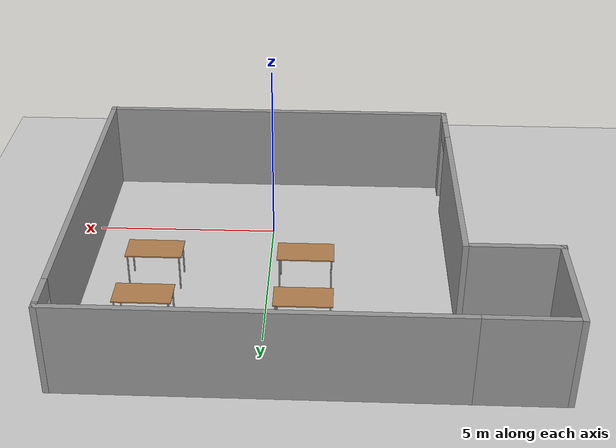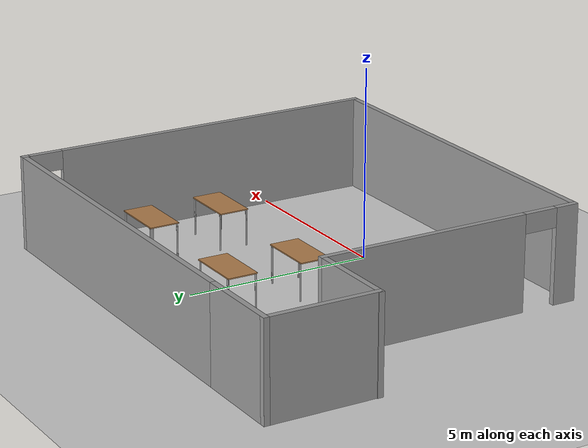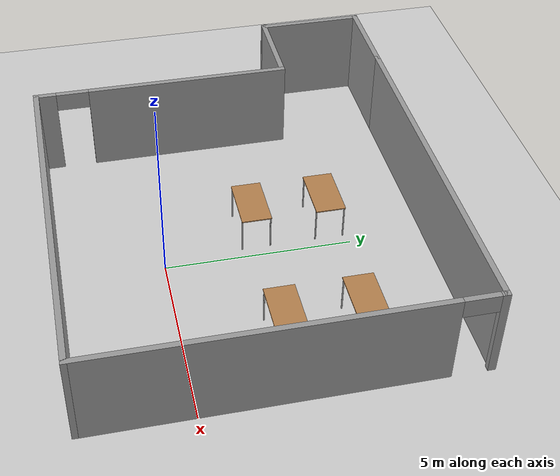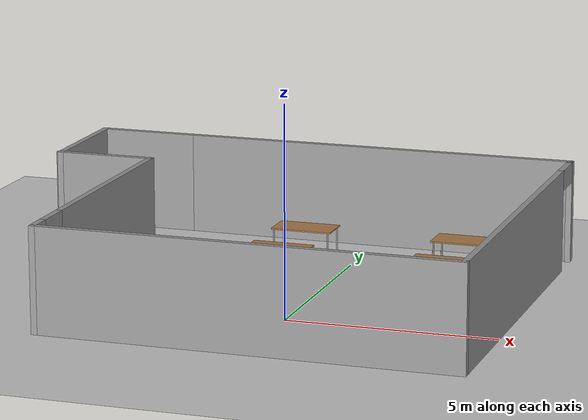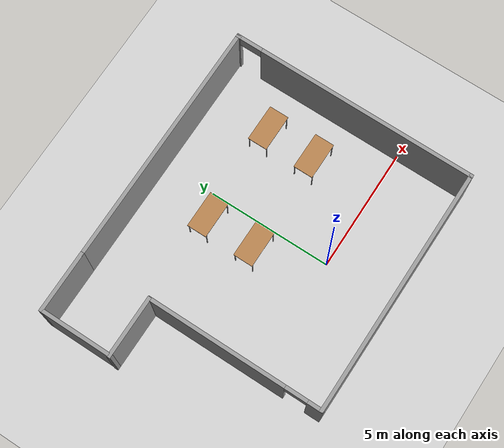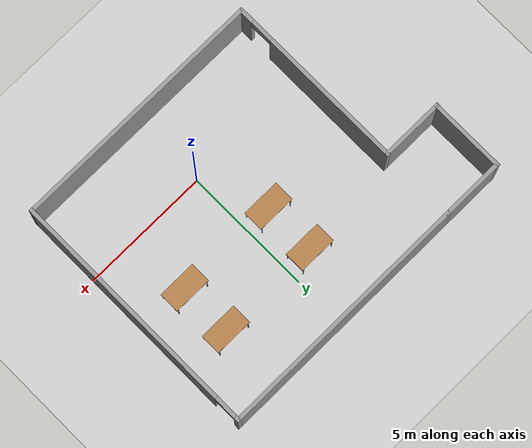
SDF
<sdf version="1.7">
 <world name="default">
  <model name="ground_plane">
   <static>1</static>
   <link name="link">
    <collision name="collision">
     <geometry><plane><normal>0 0 1</normal><size>100 100</size></plane></geometry>
     <surface>
      <contact><collide_bitmask>65535</collide_bitmask></contact>
      <friction><ode><mu>100</mu><mu2>50</mu2></ode></friction>
     </surface>
    </collision>
    <visual name="visual">
     <cast_shadows>0</cast_shadows>
     <geometry><plane><normal>0 0 1</normal><size>100 100</size></plane></geometry>
     <material>
      <script><uri>file://media/materials/scripts/gazebo.material</uri><name>Gazebo/Grey</name></script>
     </material>
    </visual>
   </link>
  </model>
  <model name="table_0_clone_1">
   <static>1</static>
   <link name="link">
    <collision name="surface">
     <pose>0 0 1 0 -0 0</pose>
     <geometry><box><size>1.5 0.8 0.03</size></box></geometry>
     <surface><friction><ode><mu>0.6</mu><mu2>0.6</mu2></ode></friction></surface>
    </collision>
    <visual name="visual1">
     <pose>0 0 1 0 -0 0</pose>
     <geometry><box><size>1.5 0.8 0.03</size></box></geometry>
     <material>
      <script><uri>file://media/materials/scripts/gazebo.material</uri><name>Gazebo/Wood</name></script>
     </material>
    </visual>
    <collision name="front_left_leg">
     <pose>0.68 0.38 0.5 0 -0 0</pose>
     <geometry><cylinder><radius>0.02</radius><length>1</length></cylinder></geometry>
    </collision>
    <visual name="front_left_leg">
     <pose>0.68 0.38 0.5 0 -0 0</pose>
     <geometry><cylinder><radius>0.02</radius><length>1</length></cylinder></geometry>
     <material>
      <script><uri>file://media/materials/scripts/gazebo.material</uri><name>Gazebo/Grey</name></script>
     </material>
    </visual>
    <collision name="front_right_leg">
     <pose>0.68 -0.38 0.5 0 -0 0</pose>
     <geometry><cylinder><radius>0.02</radius><length>1</length></cylinder></geometry>
    </collision>
    <visual name="front_right_leg">
     <pose>0.68 -0.38 0.5 0 -0 0</pose>
     <geometry><cylinder><radius>0.02</radius><length>1</length></cylinder></geometry>
     <material>
      <script><uri>file://media/materials/scripts/gazebo.material</uri><name>Gazebo/Grey</name></script>
     </material>
    </visual>
    <collision name="back_right_leg">
     <pose>-0.68 -0.38 0.5 0 -0 0</pose>
     <geometry><cylinder><radius>0.02</radius><length>1</length></cylinder></geometry>
    </collision>
    <visual name="back_right_leg">
     <pose>-0.68 -0.38 0.5 0 -0 0</pose>
     <geometry><cylinder><radius>0.02</radius><length>1</length></cylinder></geometry>
     <material>
      <script><uri>file://media/materials/scripts/gazebo.material</uri><name>Gazebo/Grey</name></script>
     </material>
    </visual>
    <collision name="back_left_leg">
     <pose>-0.68 0.38 0.5 0 -0 0</pose>
     <geometry><cylinder><radius>0.02</radius><length>1</length></cylinder></geometry>
    </collision>
    <visual name="back_left_leg">
     <pose>-0.68 0.38 0.5 0 -0 0</pose>
     <geometry><cylinder><radius>0.02</radius><length>1</length></cylinder></geometry>
     <material>
      <script><uri>file://media/materials/scripts/gazebo.material</uri><name>Gazebo/Grey</name></script>
     </material>
    </visual>
   </link>
   <pose>3 4.5 0 0 -0 0</pose>
  </model>
  <model name="table_0_clone_4">
   <static>1</static>
   <link name="link">
    <collision name="surface">
     <pose>0 0 1 0 -0 0</pose>
     <geometry><box><size>1.5 0.8 0.03</size></box></geometry>
     <surface><friction><ode><mu>0.6</mu><mu2>0.6</mu2></ode></friction></surface>
    </collision>
    <visual name="visual1">
     <pose>0 0 1 0 -0 0</pose>
     <geometry><box><size>1.5 0.8 0.03</size></box></geometry>
     <material>
      <script><uri>file://media/materials/scripts/gazebo.material</uri><name>Gazebo/Wood</name></script>
     </material>
    </visual>
    <collision name="front_left_leg">
     <pose>0.68 0.38 0.5 0 -0 0</pose>
     <geometry><cylinder><radius>0.02</radius><length>1</length></cylinder></geometry>
    </collision>
    <visual name="front_left_leg">
     <pose>0.68 0.38 0.5 0 -0 0</pose>
     <geometry><cylinder><radius>0.02</radius><length>1</length></cylinder></geometry>
     <material>
      <script><uri>file://media/materials/scripts/gazebo.material</uri><name>Gazebo/Grey</name></script>
     </material>
    </visual>
    <collision name="front_right_leg">
     <pose>0.68 -0.38 0.5 0 -0 0</pose>
     <geometry><cylinder><radius>0.02</radius><length>1</length></cylinder></geometry>
    </collision>
    <visual name="front_right_leg">
     <pose>0.68 -0.38 0.5 0 -0 0</pose>
     <geometry><cylinder><radius>0.02</radius><length>1</length></cylinder></geometry>
     <material>
      <script><uri>file://media/materials/scripts/gazebo.material</uri><name>Gazebo/Grey</name></script>
     </material>
    </visual>
    <collision name="back_right_leg">
     <pose>-0.68 -0.38 0.5 0 -0 0</pose>
     <geometry><cylinder><radius>0.02</radius><length>1</length></cylinder></geometry>
    </collision>
    <visual name="back_right_leg">
     <pose>-0.68 -0.38 0.5 0 -0 0</pose>
     <geometry><cylinder><radius>0.02</radius><length>1</length></cylinder></geometry>
     <material>
      <script><uri>file://media/materials/scripts/gazebo.material</uri><name>Gazebo/Grey</name></script>
     </material>
    </visual>
    <collision name="back_left_leg">
     <pose>-0.68 0.38 0.5 0 -0 0</pose>
     <geometry><cylinder><radius>0.02</radius><length>1</length></cylinder></geometry>
    </collision>
    <visual name="back_left_leg">
     <pose>-0.68 0.38 0.5 0 -0 0</pose>
     <geometry><cylinder><radius>0.02</radius><length>1</length></cylinder></geometry>
     <material>
      <script><uri>file://media/materials/scripts/gazebo.material</uri><name>Gazebo/Grey</name></script>
     </material>
    </visual>
   </link>
   <pose>-1 4.5 0 0 -0 0</pose>
  </model>
  <model name="table_0_clone_5">
   <static>1</static>
   <link name="link">
    <collision name="surface">
     <pose>0 0 1 0 -0 0</pose>
     <geometry><box><size>1.5 0.8 0.03</size></box></geometry>
     <surface><friction><ode><mu>0.6</mu><mu2>0.6</mu2></ode></friction></surface>
    </collision>
    <visual name="visual1">
     <pose>0 0 1 0 -0 0</pose>
     <geometry><box><size>1.5 0.8 0.03</size></box></geometry>
     <material>
      <script><uri>file://media/materials/scripts/gazebo.material</uri><name>Gazebo/Wood</name></script>
     </material>
    </visual>
    <collision name="front_left_leg">
     <pose>0.68 0.38 0.5 0 -0 0</pose>
     <geometry><cylinder><radius>0.02</radius><length>1</length></cylinder></geometry>
    </collision>
    <visual name="front_left_leg">
     <pose>0.68 0.38 0.5 0 -0 0</pose>
     <geometry><cylinder><radius>0.02</radius><length>1</length></cylinder></geometry>
     <material>
      <script><uri>file://media/materials/scripts/gazebo.material</uri><name>Gazebo/Grey</name></script>
     </material>
    </visual>
    <collision name="front_right_leg">
     <pose>0.68 -0.38 0.5 0 -0 0</pose>
     <geometry><cylinder><radius>0.02</radius><length>1</length></cylinder></geometry>
    </collision>
    <visual name="front_right_leg">
     <pose>0.68 -0.38 0.5 0 -0 0</pose>
     <geometry><cylinder><radius>0.02</radius><length>1</length></cylinder></geometry>
     <material>
      <script><uri>file://media/materials/scripts/gazebo.material</uri><name>Gazebo/Grey</name></script>
     </material>
    </visual>
    <collision name="back_right_leg">
     <pose>-0.68 -0.38 0.5 0 -0 0</pose>
     <geometry><cylinder><radius>0.02</radius><length>1</length></cylinder></geometry>
    </collision>
    <visual name="back_right_leg">
     <pose>-0.68 -0.38 0.5 0 -0 0</pose>
     <geometry><cylinder><radius>0.02</radius><length>1</length></cylinder></geometry>
     <material>
      <script><uri>file://media/materials/scripts/gazebo.material</uri><name>Gazebo/Grey</name></script>
     </material>
    </visual>
    <collision name="back_left_leg">
     <pose>-0.68 0.38 0.5 0 -0 0</pose>
     <geometry><cylinder><radius>0.02</radius><length>1</length></cylinder></geometry>
    </collision>
    <visual name="back_left_leg">
     <pose>-0.68 0.38 0.5 0 -0 0</pose>
     <geometry><cylinder><radius>0.02</radius><length>1</length></cylinder></geometry>
     <material>
      <script><uri>file://media/materials/scripts/gazebo.material</uri><name>Gazebo/Grey</name></script>
     </material>
    </visual>
   </link>
   <pose>-1 2.5 0 0 -0 0</pose>
  </model>
  <model name="table_0_clone_1_clone_clone">
   <static>1</static>
   <link name="link">
    <collision name="surface">
     <pose>0 0 1 0 -0 0</pose>
     <geometry><box><size>1.5 0.8 0.03</size></box></geometry>
     <surface><friction><ode><mu>0.6</mu><mu2>0.6</mu2></ode></friction></surface>
    </collision>
    <visual name="visual1">
     <pose>0 0 1 0 -0 0</pose>
     <geometry><box><size>1.5 0.8 0.03</size></box></geometry>
     <material>
      <script><uri>file://media/materials/scripts/gazebo.material</uri><name>Gazebo/Wood</name></script>
     </material>
    </visual>
    <collision name="front_left_leg">
     <pose>0.68 0.38 0.5 0 -0 0</pose>
     <geometry><cylinder><radius>0.02</radius><length>1</length></cylinder></geometry>
    </collision>
    <visual name="front_left_leg">
     <pose>0.68 0.38 0.5 0 -0 0</pose>
     <geometry><cylinder><radius>0.02</radius><length>1</length></cylinder></geometry>
     <material>
      <script><uri>file://media/materials/scripts/gazebo.material</uri><name>Gazebo/Grey</name></script>
     </material>
    </visual>
    <collision name="front_right_leg">
     <pose>0.68 -0.38 0.5 0 -0 0</pose>
     <geometry><cylinder><radius>0.02</radius><length>1</length></cylinder></geometry>
    </collision>
    <visual name="front_right_leg">
     <pose>0.68 -0.38 0.5 0 -0 0</pose>
     <geometry><cylinder><radius>0.02</radius><length>1</length></cylinder></geometry>
     <material>
      <script><uri>file://media/materials/scripts/gazebo.material</uri><name>Gazebo/Grey</name></script>
     </material>
    </visual>
    <collision name="back_right_leg">
     <pose>-0.68 -0.38 0.5 0 -0 0</pose>
     <geometry><cylinder><radius>0.02</radius><length>1</length></cylinder></geometry>
    </collision>
    <visual name="back_right_leg">
     <pose>-0.68 -0.38 0.5 0 -0 0</pose>
     <geometry><cylinder><radius>0.02</radius><length>1</length></cylinder></geometry>
     <material>
      <script><uri>file://media/materials/scripts/gazebo.material</uri><name>Gazebo/Grey</name></script>
     </material>
    </visual>
    <collision name="back_left_leg">
     <pose>-0.68 0.38 0.5 0 -0 0</pose>
     <geometry><cylinder><radius>0.02</radius><length>1</length></cylinder></geometry>
    </collision>
    <visual name="back_left_leg">
     <pose>-0.68 0.38 0.5 0 -0 0</pose>
     <geometry><cylinder><radius>0.02</radius><length>1</length></cylinder></geometry>
     <material>
      <script><uri>file://media/materials/scripts/gazebo.material</uri><name>Gazebo/Grey</name></script>
     </material>
    </visual>
   </link>
   <pose>3 2.5 0 0 -0 0</pose>
  </model>
  <model name="Kog_beo_room_10_10_25">
   <pose>-1.17724 2.15062 0 0 -0 0</pose>
   <link name="Wall_52">
    <collision name="Wall_52_Collision">
     <geometry><box><size>10 0.15 2.5</size></box></geometry>
     <pose>0 0 1.25 0 -0 0</pose>
    </collision>
    <visual name="Wall_52_Visual">
     <pose>0 0 1.25 0 -0 0</pose>
     <geometry><box><size>10 0.15 2.5</size></box></geometry>
     <material>
      <script><uri>file://media/materials/scripts/gazebo.material</uri><name>Gazebo/Grey</name></script>
      <ambient>1 1 1 1</ambient>
     </material>
     <meta><layer>0</layer></meta>
    </visual>
    <pose>1.18506 4.92498 0 0 -0 0</pose>
   </link>
   <link name="Wall_53">
    <pose>6.11006 -1.8e-05 0 0 -0 -1.5708</pose>
    <visual name="Wall_53_Visual_0">
     <pose>-4.89745 0 1.25 0 -0 0</pose>
     <geometry><box><size>0.20511 0.15 2.5</size></box></geometry>
     <material>
      <script><uri>file://media/materials/scripts/gazebo.material</uri><name>Gazebo/Grey</name></script>
      <ambient>1 1 1 1</ambient>
     </material>
     <meta><layer>0</layer></meta>
    </visual>
    <collision name="Wall_53_Collision_0">
     <geometry><box><size>0.20511 0.15 2.5</size></box></geometry>
     <pose>-4.89745 0 1.25 0 -0 0</pose>
    </collision>
    <visual name="Wall_53_Visual_1">
     <pose>0.552555 0 1.25 0 -0 0</pose>
     <geometry><box><size>8.89489 0.15 2.5</size></box></geometry>
     <material>
      <script><uri>file://media/materials/scripts/gazebo.material</uri><name>Gazebo/Grey</name></script>
      <ambient>1 1 1 1</ambient>
     </material>
     <meta><layer>0</layer></meta>
    </visual>
    <collision name="Wall_53_Collision_1">
     <geometry><box><size>8.89489 0.15 2.5</size></box></geometry>
     <pose>0.552555 0 1.25 0 -0 0</pose>
    </collision>
    <visual name="Wall_53_Visual_2">
     <pose>-4.34489 0 2.25 0 -0 0</pose>
     <geometry><box><size>0.9 0.15 0.5</size></box></geometry>
     <material>
      <script><uri>file://media/materials/scripts/gazebo.material</uri><name>Gazebo/Grey</name></script>
      <ambient>1 1 1 1</ambient>
     </material>
     <meta><layer>0</layer></meta>
    </visual>
    <collision name="Wall_53_Collision_2">
     <geometry><box><size>0.9 0.15 0.5</size></box></geometry>
     <pose>-4.34489 0 2.25 0 -0 0</pose>
    </collision>
   </link>
   <link name="Wall_54">
    <collision name="Wall_54_Collision">
     <geometry><box><size>10 0.15 2.5</size></box></geometry>
     <pose>0 0 1.25 0 -0 0</pose>
    </collision>
    <visual name="Wall_54_Visual">
     <pose>0 0 1.25 0 -0 0</pose>
     <geometry><box><size>10 0.15 2.5</size></box></geometry>
     <material>
      <script><uri>file://media/materials/scripts/gazebo.material</uri><name>Gazebo/Grey</name></script>
      <ambient>1 1 1 1</ambient>
     </material>
     <meta><layer>0</layer></meta>
    </visual>
    <pose>1.18506 -4.92502 0 0 -0 3.14159</pose>
   </link>
   <link name="Wall_57">
    <collision name="Wall_57_Collision">
     <geometry><box><size>2.5 0.15 2.5</size></box></geometry>
     <pose>0 0 1.25 0 -0 0</pose>
    </collision>
    <visual name="Wall_57_Visual">
     <pose>0 0 1.25 0 -0 0</pose>
     <geometry><box><size>2.5 0.15 2.5</size></box></geometry>
     <material>
      <script><uri>file://media/materials/scripts/gazebo.material</uri><name>Gazebo/Grey</name></script>
      <ambient>1 1 1 1</ambient>
     </material>
     <meta><layer>0</layer></meta>
    </visual>
    <pose>-4.91494 4.92498 0 0 -0 3.14159</pose>
   </link>
   <link name="Wall_58">
    <collision name="Wall_58_Collision">
     <geometry><box><size>3.00007 0.15 2.5</size></box></geometry>
     <pose>0 0 1.25 0 -0 0</pose>
    </collision>
    <visual name="Wall_58_Visual">
     <pose>0 0 1.25 0 -0 0</pose>
     <geometry><box><size>3.00007 0.15 2.5</size></box></geometry>
     <material>
      <script><uri>file://media/materials/scripts/gazebo.material</uri><name>Gazebo/Grey</name></script>
      <ambient>1 1 1 1</ambient>
     </material>
     <meta><layer>0</layer></meta>
    </visual>
    <pose>-6.08994 3.49998 0 0 -0 -1.5708</pose>
   </link>
   <link name="Wall_59">
    <collision name="Wall_59_Collision">
     <geometry><box><size>2.5 0.15 2.5</size></box></geometry>
     <pose>0 0 1.25 0 -0 0</pose>
    </collision>
    <visual name="Wall_59_Visual">
     <pose>0 0 1.25 0 -0 0</pose>
     <geometry><box><size>2.5 0.15 2.5</size></box></geometry>
     <material>
      <script><uri>file://media/materials/scripts/gazebo.material</uri><name>Gazebo/Grey</name></script>
      <ambient>1 1 1 1</ambient>
     </material>
     <meta><layer>0</layer></meta>
    </visual>
    <pose>-4.93506 2.07498 0 0 -0 0</pose>
   </link>
   <link name="Wall_60">
    <pose>-3.73994 -1.42502 0 0 -0 -1.5708</pose>
    <visual name="Wall_60_Visual_0">
     <pose>-0.764106 0 1.25 0 -0 0</pose>
     <geometry><box><size>5.62179 0.15 2.5</size></box></geometry>
     <material>
      <script><uri>file://media/materials/scripts/gazebo.material</uri><name>Gazebo/Grey</name></script>
      <ambient>1 1 1 1</ambient>
     </material>
     <meta><layer>0</layer></meta>
    </visual>
    <collision name="Wall_60_Collision_0">
     <geometry><box><size>5.62179 0.15 2.5</size></box></geometry>
     <pose>-0.764106 0 1.25 0 -0 0</pose>
    </collision>
    <visual name="Wall_60_Visual_1">
     <pose>3.26089 0 1.25 0 -0 0</pose>
     <geometry><box><size>0.628212 0.15 2.5</size></box></geometry>
     <material>
      <script><uri>file://media/materials/scripts/gazebo.material</uri><name>Gazebo/Grey</name></script>
      <ambient>1 1 1 1</ambient>
     </material>
     <meta><layer>0</layer></meta>
    </visual>
    <collision name="Wall_60_Collision_1">
     <geometry><box><size>0.628212 0.15 2.5</size></box></geometry>
     <pose>3.26089 0 1.25 0 -0 0</pose>
    </collision>
    <visual name="Wall_60_Visual_2">
     <pose>2.49679 0 2.25 0 -0 0</pose>
     <geometry><box><size>0.9 0.15 0.5</size></box></geometry>
     <material>
      <script><uri>file://media/materials/scripts/gazebo.material</uri><name>Gazebo/Grey</name></script>
      <ambient>1 1 1 1</ambient>
     </material>
     <meta><layer>0</layer></meta>
    </visual>
    <collision name="Wall_60_Collision_2">
     <geometry><box><size>0.9 0.15 0.5</size></box></geometry>
     <pose>2.49679 0 2.25 0 -0 0</pose>
    </collision>
   </link>
   <static>1</static>
  </model>
 </world>
</sdf>
